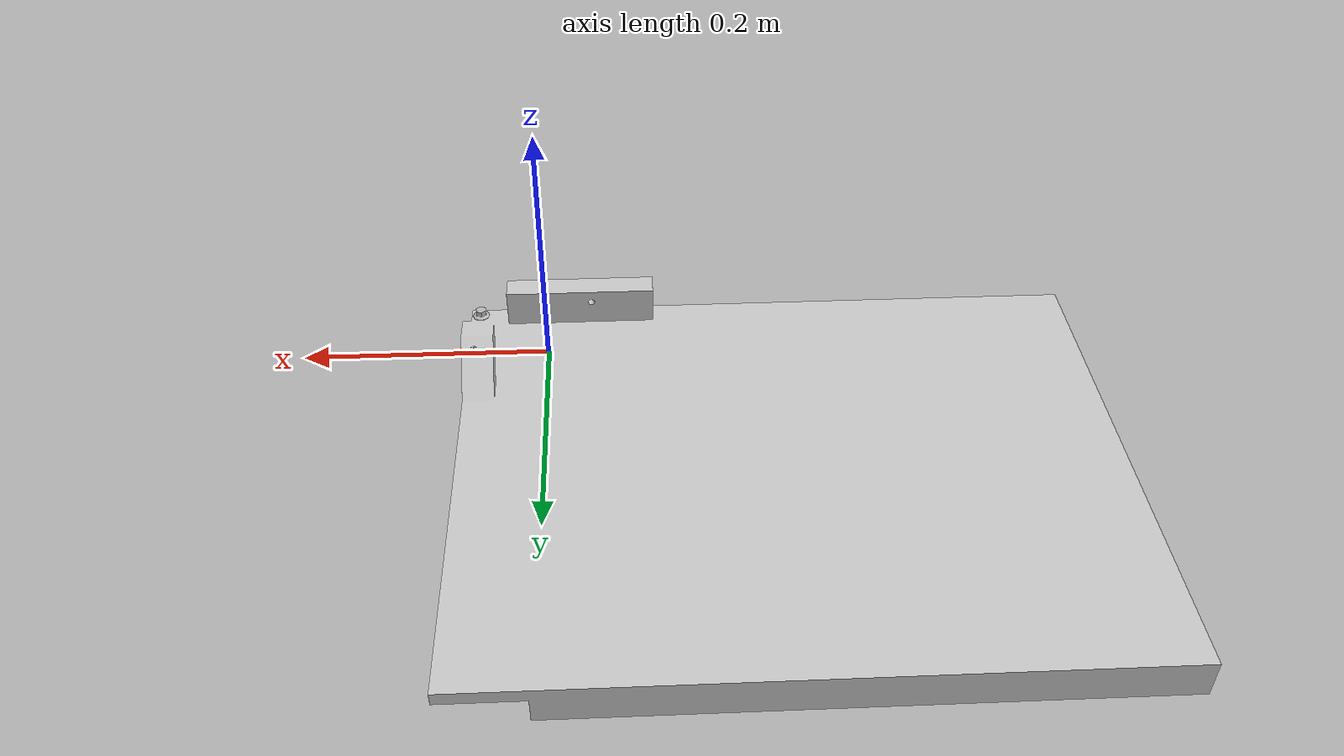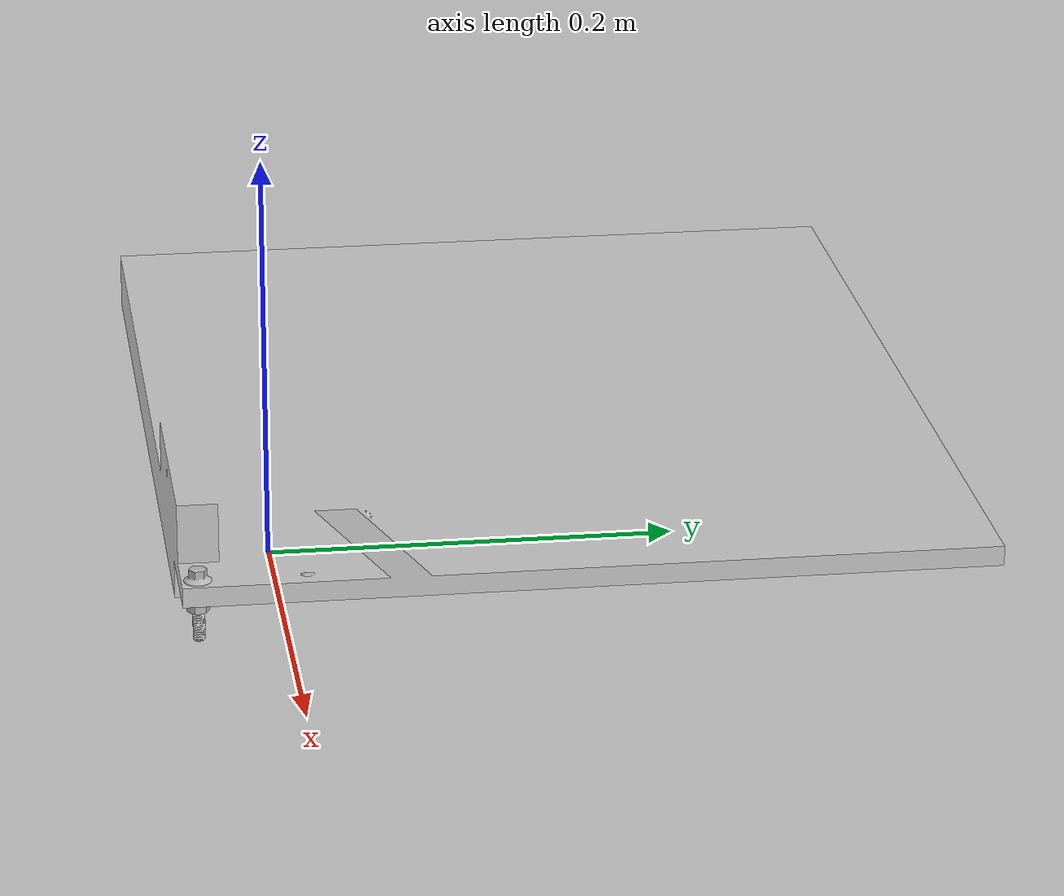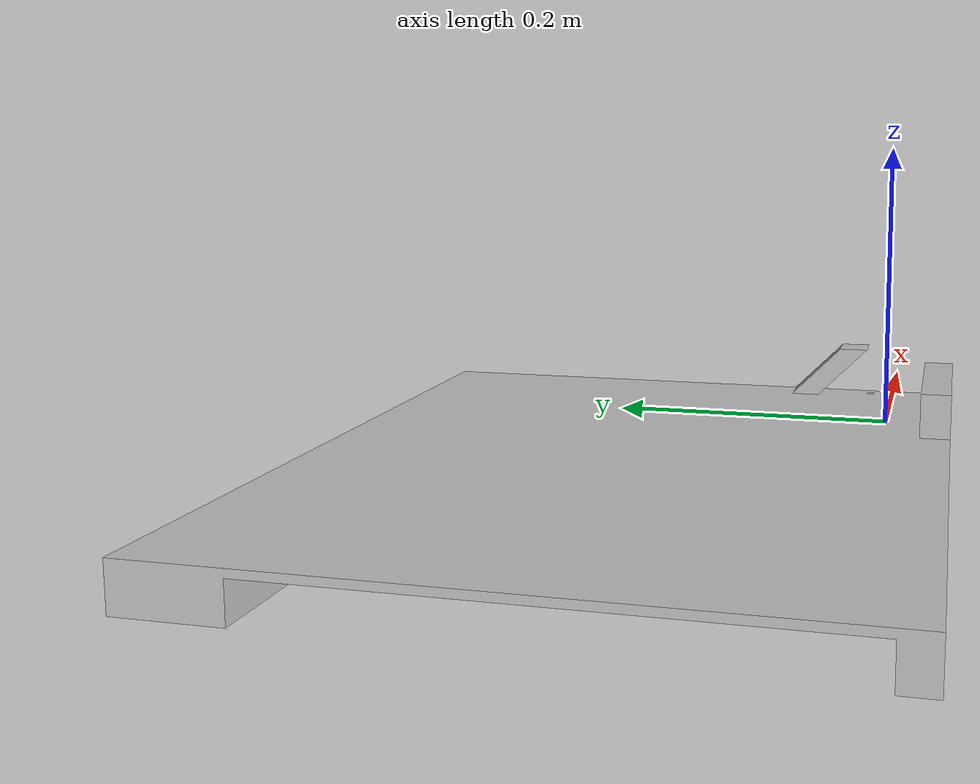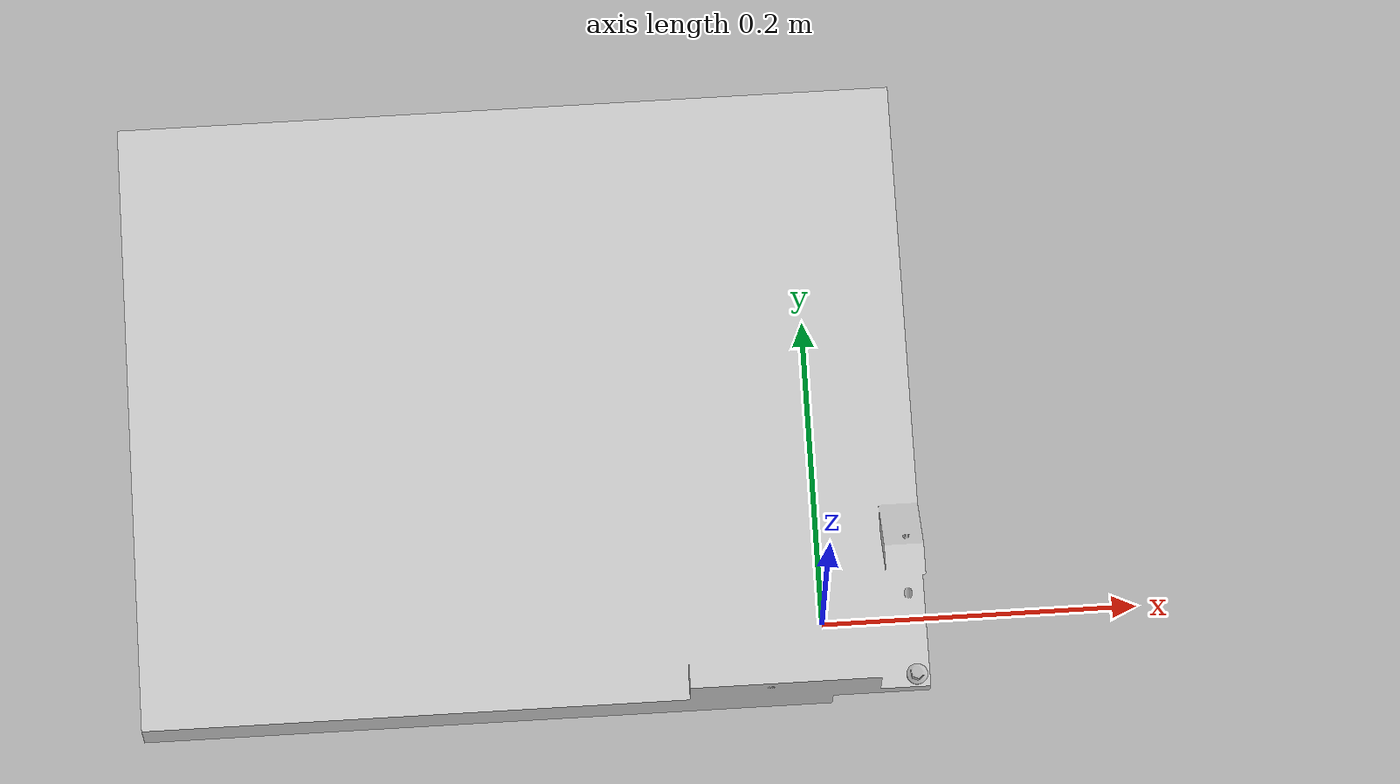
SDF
<sdf version='1.6'>
  <model name='v_battery'>
    <link name='v_battery_base_link'>
      <pose frame=''>0 0 0 0 -0 0</pose>
      <inertial>
        <pose frame=''>-0.177939 0.001405 -0.182317 0 -0 0</pose>
        <mass>2.14786</mass>
        <inertia>
          <ixx>0.0444602</ixx>
          <ixy>-0.000641562</ixy>
          <ixz>-0.00551719</ixz>
          <iyy>0.0897722</iyy>
          <iyz>-0.00105284</iyz>
          <izz>0.0457645</izz>
        </inertia>
      </inertial>
      <collision name='v_battery_base_link_collision'>
        <pose frame=''>0 0 0 0 -0 0</pose>
        <geometry>
          <mesh>
            <scale>1 1 1</scale>
            <uri>model://battery_pack_describe/meshes/v_battery_base_link.STL</uri>
          </mesh>
        </geometry>
        <surface>
          <contact>
            <ode/>
          </contact>
          <friction>
            <ode/>
          </friction>
        </surface>
      </collision>
      <collision name='v_battery_base_link_fixed_joint_lump__v_battery_nut_Link_collision_1'>
        <pose frame=''>0.057323 -0.038452 0 0 -0 2.7485</pose>
        <geometry>
          <mesh>
            <scale>1 1 1</scale>
            <uri>model://battery_pack_describe/meshes/v_battery_nut_Link.STL</uri>
          </mesh>
        </geometry>
        <surface>
          <contact>
            <ode/>
          </contact>
          <friction>
            <ode/>
          </friction>
        </surface>
      </collision>
      <visual name='v_battery_base_link_visual'>
        <pose frame=''>0 0 0 0 -0 0</pose>
        <geometry>
          <mesh>
            <scale>1 1 1</scale>
            <uri>model://battery_pack_describe/meshes/v_battery_base_link.STL</uri>
          </mesh>
        </geometry>
        <material>
          <script>
            <uri>model://battery_pack_describe/materials/scripts</uri>
            <uri>model://battery_pack_describe/materials/textures/</uri>
            <name>MyGroundPlane/Image</name>
          </script>
        </material>
      </visual>
      <visual name='v_battery_base_link_fixed_joint_lump__v_battery_nut_Link_visual_1'>
        <pose frame=''>0.057323 -0.038452 0 0 -0 2.7485</pose>
        <geometry>
          <mesh>
            <scale>1 1 1</scale>
            <uri>model://battery_pack_describe/meshes/v_battery_nut_Link.STL</uri>
          </mesh>
        </geometry>
        <material>
          <script>
            <uri>model://battery_pack_describe/materials/scripts</uri>
            <uri>model://battery_pack_describe/materials/textures/</uri>
            <name>MyGroundPlane/Image</name>
          </script>
        </material>
      </visual>
      <velocity_decay/>
      <gravity>1</gravity>
      <velocity_decay/>
    </link>
    <link name='v_battery_bolt_Link'>
      <pose frame=''>0.057323 -0.038452 0 -2.7485 1.57079 3.14159</pose>
      <inertial>
        <pose frame=''>-0.002248 -0 0 0 -0 0</pose>
        <mass>0.0100431</mass>
        <inertia>
          <ixx>8.16036e-08</ixx>
          <ixy>-2.67875e-13</ixy>
          <ixz>1.25078e-13</ixz>
          <iyy>1.22915e-06</iyy>
          <iyz>5.98229e-14</iyz>
          <izz>1.22915e-06</izz>
        </inertia>
      </inertial>
      <collision name='v_battery_bolt_Link_collision'>
        <pose frame=''>0 0 0 0 -0 0</pose>
        <geometry>
          <mesh>
            <scale>1 1 1</scale>
            <uri>model://battery_pack_describe/meshes/v_battery_bolt_Link.STL</uri>
          </mesh>
        </geometry>
        <surface>
          <contact>
            <ode/>
          </contact>
          <friction>
            <ode/>
          </friction>
        </surface>
      </collision>
      <visual name='v_battery_bolt_Link_visual'>
        <pose frame=''>0 0 0 0 -0 0</pose>
        <geometry>
          <mesh>
            <scale>1 1 1</scale>
            <uri>model://battery_pack_describe/meshes/v_battery_bolt_Link.STL</uri>
          </mesh>
        </geometry>
        <material>
          <script>
            <uri>model://battery_pack_describe/materials/scripts</uri>
            <uri>model://battery_pack_describe/materials/textures/</uri>
            <name>MyGroundPlane/Image</name>
          </script>
        </material>
      </visual>
      <gravity>1</gravity>
      <velocity_decay/>
    </link>
    <joint name='v_battery_bolt_joint' type='revolute'>
      <child>v_battery_bolt_Link</child>
      <parent>v_battery_base_link</parent>
      <axis>
        <xyz>1 0 0</xyz>
        <limit>
          <lower>-1e+16</lower>
          <upper>1e+16</upper>
        </limit>
        <dynamics>
          <spring_reference>0</spring_reference>
          <spring_stiffness>0</spring_stiffness>
        </dynamics>
        <use_parent_model_frame>0</use_parent_model_frame>
      </axis>
    </joint>
  </model>
</sdf>
